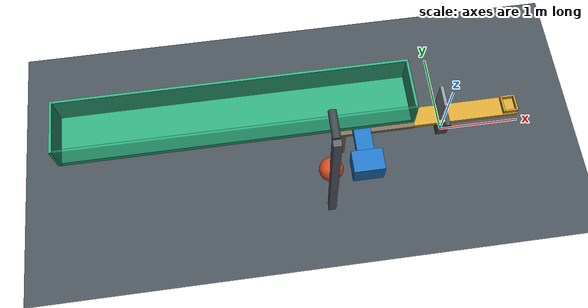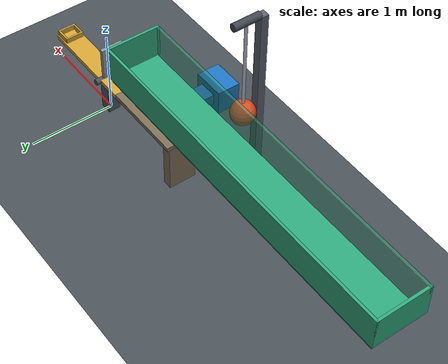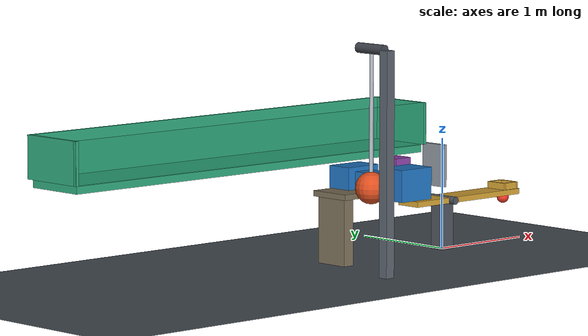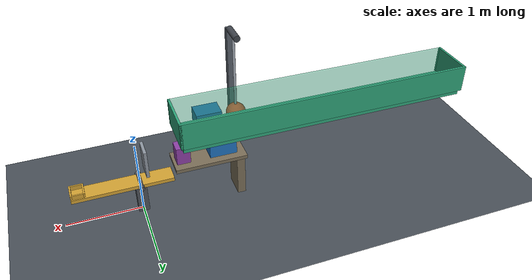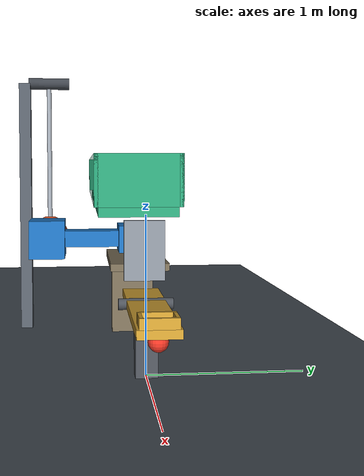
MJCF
<mujoco model="pendulum_cart_seesaw_catch">
  <compiler angle="degree" autolimits="true" inertiafromgeom="true"/>
  <option timestep="0.002" gravity="0 0 -9.81" integrator="implicitfast" solver="Newton" iterations="100" tolerance="1e-9"/>
  <size njmax="1000" nconmax="300"/>
  <visual>
    <global azimuth="125" elevation="-18"/>
    <map znear="0.01" zfar="30"/>
  </visual>

  <worldbody>
    <light name="overhead" pos="-1 -2 6" dir="0 0 -1" diffuse="0.85 0.85 0.85"/>
    <camera name="overview" pos="-1.8 -7 3.5" xyaxes="1 0 0 0 0.35 0.937"/>
    <geom name="floor" type="plane" size="8 4 0.1" friction="0.9 0.01 0.005" rgba="0.28 0.31 0.34 1"/>

    <!-- The 1.2 m pendulum starts at 60 degrees: its bob is 0.6 m above its lowest point. -->
    <body name="pendulum" pos="-1.52 -0.65 1.96">
      <joint name="pendulum_hinge" type="hinge" axis="0 1 0" range="-75 75" damping="0.01"/>
      <geom name="pendulum_rod" type="capsule" fromto="0 0 0 0 0 -1.2" size="0.018" mass="0.05" contype="0" conaffinity="0" rgba="0.65 0.68 0.72 1"/>
      <geom name="pendulum_bob" type="sphere" pos="0 0 -1.2" size="0.14" mass="3" friction="0.3 0.005 0.001" solref="0.006 1" solimp="0.95 0.99 0.001" rgba="0.85 0.3 0.12 1"/>
    </body>

    <body name="pendulum_mount" pos="-1.52 -0.65 1.96">
      <geom name="pendulum_mount_axle" type="cylinder" size="0.045 0.16" quat="0.70710678 0.70710678 0 0" contype="0" conaffinity="0" rgba="0.25 0.27 0.3 1"/>
      <geom name="pendulum_mount_post" type="box" pos="0 -0.19 -0.98" size="0.045 0.045 0.98" contype="0" conaffinity="0" rgba="0.35 0.38 0.42 1"/>
    </body>

    <!-- The transverse striker lets the pendulum swing beside the elevated cup. -->
    <body name="cart" pos="-1.1 0 0.76">
      <joint name="cart_slide" type="slide" axis="1 0 0" range="0 0.55" damping="0.025" solreflimit="0.004 1"/>
      <geom name="cart_pusher" type="box" size="0.18 0.12 0.10" mass="0.3" friction="0.12 0.005 0.001" solref="0.006 1" rgba="0.12 0.45 0.75 1"/>
      <geom name="cart_crossbar" type="box" pos="0 -0.32 0" size="0.10 0.32 0.06" mass="0.1" rgba="0.12 0.45 0.75 1"/>
      <geom name="cart_striker" type="box" pos="0 -0.65 0" size="0.18 0.13 0.14" mass="0.4" friction="0.2 0.005 0.001" solref="0.006 1" rgba="0.12 0.45 0.75 1"/>
    </body>

    <body name="weight_shelf">
      <geom name="weight_shelf_top" type="box" pos="-0.925 0 0.615" size="0.475 0.20 0.025" friction="0.08 0.003 0.001" solref="0.006 1" rgba="0.48 0.43 0.34 1"/>
      <geom name="weight_shelf_leg" type="box" pos="-1.32 0 0.295" size="0.055 0.16 0.295" rgba="0.48 0.43 0.34 1"/>
    </body>

    <!-- This low-friction fence arrests the weight's horizontal motion over the lever. -->
    <body name="weight_guide">
      <geom name="weight_guide_fence" type="box" pos="-0.10 0 0.77" size="0.02 0.13 0.19" friction="0.01 0.001 0.0001" solref="0.006 1" rgba="0.55 0.58 0.62 1"/>
    </body>

    <body name="weight" pos="-0.58 0 0.76">
      <freejoint name="weight_free"/>
      <geom name="weight_block" type="box" size="0.09 0.09 0.12" mass="1.5" friction="0.12 0.005 0.001" solref="0.006 1" solimp="0.95 0.99 0.001" rgba="0.55 0.25 0.65 1"/>
    </body>

    <body name="seesaw_mount" pos="0 0 0.45">
      <geom name="seesaw_mount_axle" type="cylinder" size="0.035 0.17" quat="0.70710678 0.70710678 0 0" contype="0" conaffinity="0" rgba="0.3 0.32 0.35 1"/>
      <geom name="seesaw_mount_stand" type="box" pos="0 0 -0.235" size="0.07 0.07 0.215" contype="0" conaffinity="0" rgba="0.3 0.32 0.35 1"/>
    </body>

    <!-- The joint's -25 degree limit is the weighted end's lower stop. -->
    <body name="seesaw" pos="0 0 0.45">
      <joint name="seesaw_hinge" type="hinge" axis="0 1 0" range="-25 10" damping="0.002" solreflimit="0.004 1" solimplimit="0.95 0.99 0.001"/>
      <geom name="seesaw_plank" type="box" pos="0.22 0 0" size="0.65 0.12 0.025" mass="0.10" friction="0.3 0.005 0.001" solref="0.006 1" rgba="0.82 0.63 0.20 1"/>
      <geom name="seesaw_cradle_left" type="box" pos="0.70 0 0.055" size="0.01 0.105 0.03" mass="0.005" friction="0.2 0.005 0.001" solref="0.006 1" rgba="0.82 0.63 0.20 1"/>
      <geom name="seesaw_cradle_right" type="box" pos="0.86 0 0.055" size="0.01 0.105 0.03" mass="0.005" friction="0.2 0.005 0.001" solref="0.006 1" rgba="0.82 0.63 0.20 1"/>
      <geom name="seesaw_cradle_front" type="box" pos="0.78 -0.095 0.055" size="0.07 0.01 0.03" mass="0.005" friction="0.2 0.005 0.001" solref="0.006 1" rgba="0.82 0.63 0.20 1"/>
      <geom name="seesaw_cradle_back" type="box" pos="0.78 0.095 0.055" size="0.07 0.01 0.03" mass="0.005" friction="0.2 0.005 0.001" solref="0.006 1" rgba="0.82 0.63 0.20 1"/>
    </body>

    <body name="ball" pos="0.782389 0 0.395309">
      <freejoint name="ball_free"/>
      <geom name="ball_sphere" type="sphere" size="0.055" mass="0.04" condim="6" friction="0.8 0.01 0.008" solref="0.006 1" solimp="0.95 0.99 0.001" rgba="0.95 0.22 0.15 1"/>
    </body>

    <!-- An open rectangular cup, above the machinery and inward from the launch end. -->
    <body name="cup">
      <geom name="cup_bottom" type="box" pos="-2.525 0 0.985" size="1.975 0.28 0.035" condim="6" friction="1 0.01 0.008" solref="0.008 1" solimp="0.95 0.99 0.001" rgba="0.18 0.65 0.48 1"/>
      <geom name="cup_left_wall" type="box" pos="-4.515 0 1.205" size="0.015 0.31 0.185" condim="6" friction="0.8 0.01 0.008" solref="0.008 1" rgba="0.18 0.65 0.48 1"/>
      <geom name="cup_right_wall" type="box" pos="-0.535 0 1.205" size="0.015 0.31 0.185" condim="6" friction="0.8 0.01 0.008" solref="0.008 1" rgba="0.18 0.65 0.48 1"/>
      <geom name="cup_front_wall" type="box" pos="-2.525 -0.295 1.205" size="2.005 0.015 0.185" condim="6" friction="0.8 0.01 0.008" solref="0.008 1" rgba="0.18 0.65 0.48 0.45"/>
      <geom name="cup_back_wall" type="box" pos="-2.525 0.295 1.205" size="2.005 0.015 0.185" condim="6" friction="0.8 0.01 0.008" solref="0.008 1" rgba="0.18 0.65 0.48 1"/>
    </body>
  </worldbody>

  <keyframe>
    <key name="start" qpos="1.0471975512 0 -0.58 0 0.76 1 0 0 0 0.1745329252 0.782389 0 0.395309 1 0 0 0"/>
  </keyframe>
</mujoco>
